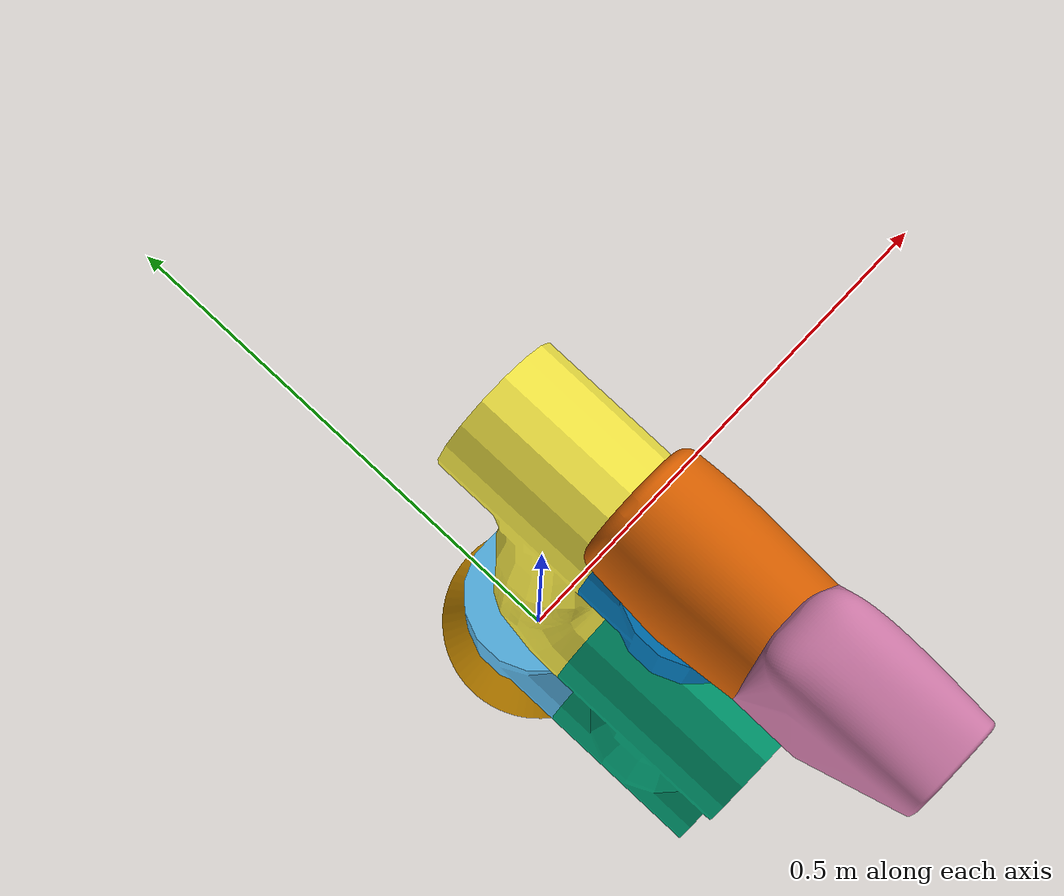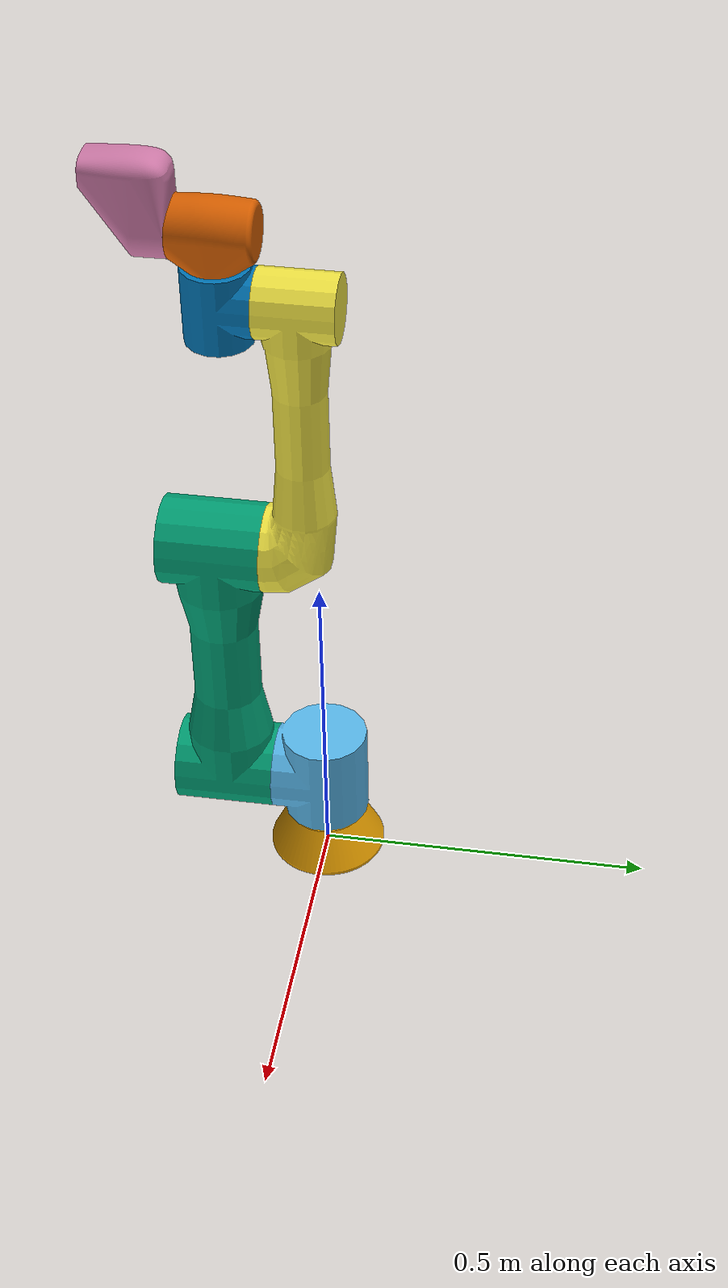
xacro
<?xml version="1.0"?>
<robot xmlns:xacro="http://www.ros.org/wiki/xacro" name="tm5-900">

  <xacro:arg name="ns" default="" />
  <xacro:arg name="prefix" default="" />
  <xacro:arg name="color" default="none" />
  <xacro:arg name="trans_hw_iface" default="hardware_interface/VelocityJointInterface" />

  <xacro:include filename="$(find tm_description)/xacro/macro.gazebo.xacro" />
  <xacro:include filename="$(find tm_description)/xacro/macro.transmission.xacro" />
  <xacro:include filename="$(find tm_description)/xacro/macro.materials.xacro" />

  <!-- tm5-900 -->
  <!-- If the user want to use newly generated named robot description file as user_defined.urdf.xacro, -->
  <!-- you must modify 'macro.tm5-900-nominal.urdf.xacro' to 'user_defined.urdf.xacro'  -->
  <xacro:include filename="$(find tm_description)/xacro/macro.tm5-900-nominal.urdf.xacro" />

  <xacro:tmr_gazebo ns="$(arg ns)" prefix="$(arg prefix)" />
  <xacro:tmr_transmission prefix="$(arg prefix)" hw_iface="$(arg trans_hw_iface)" />
  <xacro:tmr_materials/>

  <!-- Arm -->
  <xacro:property name="color" value="$(arg color)"/>
  <xacro:if value="${color == 'none'}">
    <xacro:tm5-900 ns="$(arg ns)" prefix="$(arg prefix)" />
  </xacro:if>

  <!-- Arm.color.stl -->
  <xacro:unless value="${color == 'none'}">
    <xacro:tm5-900 ns="$(arg ns)" prefix="$(arg prefix)" color="${color}" format="stl" />
  </xacro:unless>

</robot>

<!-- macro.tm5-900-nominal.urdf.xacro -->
<robot xmlns:xacro="http://www.ros.org/wiki/xacro">

  <xacro:include filename="$(find tm_description)/xacro/macro.inertial.xacro" />

  <xacro:macro name="tm5-900" params="ns prefix color:=none format:=obj
    shoulder_1_joint_lower_limit:=${radians(-270)}    shoulder_1_joint_upper_limit:=${radians(270)}
    shoulder_2_joint_lower_limit:=${radians(-180)}    shoulder_2_joint_upper_limit:=${radians(180)}
    elbow_joint_lower_limit:=${radians(-155)}    elbow_joint_upper_limit:=${radians(155)}
    wrist_1_joint_lower_limit:=${radians(-180)}    wrist_1_joint_upper_limit:=${radians(180)}
    wrist_2_joint_lower_limit:=${radians(-180)}    wrist_2_joint_upper_limit:=${radians(180)}
    wrist_3_joint_lower_limit:=${radians(-270)}    wrist_3_joint_upper_limit:=${radians(270)}
    shoulder_1_joint_velocity_limit:=${radians(180)}
    shoulder_2_joint_velocity_limit:=${radians(180)}
    elbow_joint_velocity_limit:=${radians(180)}
    wrist_1_joint_velocity_limit:=${radians(225)}
    wrist_2_joint_velocity_limit:=${radians(225)}
    wrist_3_joint_velocity_limit:=${radians(225)}
    shoulder_1_joint_effort_limit:=${157}
    shoulder_2_joint_effort_limit:=${157}
    elbow_joint_effort_limit:=${157}
    wrist_1_joint_effort_limit:=${43}
    wrist_2_joint_effort_limit:=${43}
    wrist_3_joint_effort_limit:=${43}
    safety_limits:=false safety_pos_margin:=0.15
    safety_k_position:=20">

   <xacro:property name="damping_factor" value="0.000"/>
   <xacro:property name="d1" value="${damping_factor*0.1}"/>
   <xacro:property name="d2" value="${damping_factor*0.1}"/>
   <xacro:property name="d3" value="${damping_factor*0.1}"/>
   <xacro:property name="d4" value="${damping_factor*0.1}"/>
   <xacro:property name="d5" value="${damping_factor*0.1}"/>
   <xacro:property name="d6" value="${damping_factor*0.1}"/>

   <xacro:property name="friction_factor" value="0.000"/>
   <xacro:property name="f1" value="${friction_factor*0.1}"/>
   <xacro:property name="f2" value="${friction_factor*0.1}"/>
   <xacro:property name="f3" value="${friction_factor*0.1}"/>
   <xacro:property name="f4" value="${friction_factor*0.1}"/>
   <xacro:property name="f5" value="${friction_factor*0.1}"/>
   <xacro:property name="f6" value="${friction_factor*0.1}"/>

    <!-- Inertia parameters -->
    <xacro:property name="mass_0" value="1.000" />
    <xacro:property name="mass_1" value="4.032" />
    <xacro:property name="mass_2" value="8.897" />
    <xacro:property name="mass_3" value="2.443" />
    <xacro:property name="mass_4" value="1.576" />
    <xacro:property name="mass_5" value="1.576" />
    <xacro:property name="mass_6" value="0.65" />

    <xacro:property name="unit_factor" value="0.000001"/>
    <xacro:property name="ixx_1" value="${8800.119*unit_factor}" />
    <xacro:property name="ixx_2" value="${24459.295*unit_factor}" />
    <xacro:property name="ixx_3" value="${3632.988*unit_factor}" />
    <xacro:property name="ixx_4" value="${2058.405*unit_factor}" />
    <xacro:property name="ixx_5" value="${2058.405*unit_factor}" />
    <xacro:property name="ixx_6" value="${774.544*unit_factor}" />

    <xacro:property name="iyy_1" value="${11548.982*unit_factor}" />
    <xacro:property name="iyy_2" value="${205888.616*unit_factor}" />
    <xacro:property name="iyy_3" value="${36359.26*unit_factor}" />
    <xacro:property name="iyy_4" value="${2563.079*unit_factor}" />
    <xacro:property name="iyy_5" value="${2563.079*unit_factor}" />
    <xacro:property name="iyy_6" value="${1383.811*unit_factor}" />

    <xacro:property name="izz_1" value="${11970.081*unit_factor}" />
    <xacro:property name="izz_2" value="${212473.4246*unit_factor}" />
    <xacro:property name="izz_3" value="${36895.644*unit_factor}" />
    <xacro:property name="izz_4" value="${2643.21*unit_factor}" />
    <xacro:property name="izz_5" value="${2643.21*unit_factor}" />
    <xacro:property name="izz_6" value="${1559.496*unit_factor}" />

<!--LinkDescription-->
  <link name="${prefix}link_0">

    <visual>
      <geometry>
        <mesh filename="package://tm_description/meshes/tm5-900/visual/tm5-base.${format}" />
      </geometry>
      <material name="${color}" />
    </visual>
    <collision>
      <geometry>
        <mesh filename="package://tm_description/meshes/tm5-900/collision/tm5-base_c.stl" />
      </geometry>
    </collision>
<!--inertial-->
    <xacro:cylinder_inertial_z radius="0.06" length="0.05" mass="${mass_0}">
      <origin rpy="0.000000 0.000000 0.000000" xyz="0.000000 0.000000 0.000000" />
    </xacro:cylinder_inertial_z>
  </link>
  <joint name="${prefix}shoulder_1_joint" type="revolute">
    <parent link="${prefix}link_0" />
    <child link="${prefix}link_1" />
    <origin rpy="0.000000 -0.000000 0.000000" xyz="0.000000 0.000000 0.145200" />
    <axis xyz="0 0 1" />
<!--limit-->
    <limit lower="${shoulder_1_joint_lower_limit}" upper="${shoulder_1_joint_upper_limit}" velocity="${shoulder_1_joint_velocity_limit}" effort="${shoulder_1_joint_effort_limit}" />
    <xacro:if value="${safety_limits}">
      <safety_controller soft_lower_limit="${shoulder_1_joint_lower_limit + safety_pos_margin}" soft_upper_limit="${shoulder_1_joint_upper_limit - safety_pos_margin}" k_position="${safety_k_position}" k_velocity="0.0" />
    </xacro:if>
    <dynamics damping="${d1}" friction="${f1}" />
  </joint>
  <link name="${prefix}link_1">

    <visual>
      <geometry>
        <mesh filename="package://tm_description/meshes/tm5-900/visual/tmr_400w_01.${format}" />
      </geometry>
      <material name="${color}" />
    </visual>
    <collision>
      <geometry>
        <mesh filename="package://tm_description/meshes/tm5-900/collision/tmr_400w_01_c.stl" />
      </geometry>
    </collision>
    <inertial>
      <origin rpy="0.000000 0.000000 0.000000" xyz="0.000000 0.000000 0.000000" />
      <mass value="${mass_1}" />
      <inertia ixx="${ixx_1}" ixy="0.000000" ixz="0.000000" iyy="${iyy_1}" iyz="0.000000" izz="${izz_1}" />
    </inertial>
  </link>
  <joint name="${prefix}shoulder_2_joint" type="revolute">
    <parent link="${prefix}link_1" />
    <child link="${prefix}link_2" />
    <origin rpy="-1.570796 -1.570796 0.000000" xyz="0.000000 0.000000 0.000000" />
    <axis xyz="0 0 1" />
<!--limit-->
    <limit lower="${shoulder_2_joint_lower_limit}" upper="${shoulder_2_joint_upper_limit}" velocity="${shoulder_2_joint_velocity_limit}" effort="${shoulder_2_joint_effort_limit}" />
    <xacro:if value="${safety_limits}">
      <safety_controller soft_lower_limit="${shoulder_2_joint_lower_limit + safety_pos_margin}" soft_upper_limit="${shoulder_2_joint_upper_limit - safety_pos_margin}" k_position="${safety_k_position}" k_velocity="0.0" />
    </xacro:if>
    <dynamics damping="${d2}" friction="${f2}" />
  </joint>
  <link name="${prefix}link_2">

    <visual>
      <geometry>
        <mesh filename="package://tm_description/meshes/tm5-900/visual/tm5-900_arm1.${format}" />
      </geometry>
      <material name="${color}" />
    </visual>
    <collision>
      <geometry>
        <mesh filename="package://tm_description/meshes/tm5-900/collision/tm5-900_arm1_c.stl" />
      </geometry>
    </collision>
    <inertial>
      <origin rpy="0.000000 0.000000 0.000000" xyz="0.000000 0.000000 0.000000" />
      <mass value="${mass_2}" />
      <inertia ixx="${ixx_2}" ixy="0.000000" ixz="0.000000" iyy="${iyy_2}" iyz="0.000000" izz="${izz_2}" />
    </inertial>
  </link>
  <joint name="${prefix}elbow_joint" type="revolute">
    <parent link="${prefix}link_2" />
    <child link="${prefix}link_3" />
    <origin rpy="0.000000 -0.000000 0.000000" xyz="0.429000 0.000000 0.000000" />
    <axis xyz="0 0 1" />
<!--limit-->
    <limit lower="${elbow_joint_lower_limit}" upper="${elbow_joint_upper_limit}" velocity="${elbow_joint_velocity_limit}" effort="${elbow_joint_effort_limit}" />
    <xacro:if value="${safety_limits}">
      <safety_controller soft_lower_limit="${elbow_joint_lower_limit + safety_pos_margin}" soft_upper_limit="${elbow_joint_upper_limit - safety_pos_margin}" k_position="${safety_k_position}" k_velocity="0.0" />
    </xacro:if>
    <dynamics damping="${d3}" friction="${f3}" />
  </joint>
  <link name="${prefix}link_3">

    <visual>
      <geometry>
        <mesh filename="package://tm_description/meshes/tm5-900/visual/tm5-900_arm2.${format}" />
      </geometry>
      <material name="${color}" />
    </visual>
    <collision>
      <geometry>
        <mesh filename="package://tm_description/meshes/tm5-900/collision/tm5-900_arm2_c.stl" />
      </geometry>
    </collision>
    <inertial>
      <origin rpy="0.000000 0.000000 0.000000" xyz="0.000000 0.000000 0.000000" />
      <mass value="${mass_3}" />
      <inertia ixx="${ixx_3}" ixy="0.000000" ixz="0.000000" iyy="${iyy_3}" iyz="0.000000" izz="${izz_3}" />
    </inertial>
  </link>
  <joint name="${prefix}wrist_1_joint" type="revolute">
    <parent link="${prefix}link_3" />
    <child link="${prefix}link_4" />
    <origin rpy="0.000000 -0.000000 1.570796" xyz="0.411500 0.000000 -0.122300" />
    <axis xyz="0 0 1" />
<!--limit-->
    <limit lower="${wrist_1_joint_lower_limit}" upper="${wrist_1_joint_upper_limit}" velocity="${wrist_1_joint_velocity_limit}" effort="${wrist_1_joint_effort_limit}" />
    <xacro:if value="${safety_limits}">
      <safety_controller soft_lower_limit="${wrist_1_joint_lower_limit + safety_pos_margin}" soft_upper_limit="${wrist_1_joint_upper_limit - safety_pos_margin}" k_position="${safety_k_position}" k_velocity="0.0" />
    </xacro:if>
    <dynamics damping="${d4}" friction="${f4}" />
  </joint>
  <link name="${prefix}link_4">

    <visual>
      <geometry>
        <mesh filename="package://tm_description/meshes/tm5-900/visual/tmr_100w_01.${format}" />
      </geometry>
      <material name="${color}" />
    </visual>
    <collision>
      <geometry>
        <mesh filename="package://tm_description/meshes/tm5-900/collision/tmr_100w_01_c.stl" />
      </geometry>
    </collision>
    <inertial>
      <origin rpy="0.000000 0.000000 0.000000" xyz="0.000000 0.000000 0.000000" />
      <mass value="${mass_4}" />
      <inertia ixx="${ixx_4}" ixy="0.000000" ixz="0.000000" iyy="${iyy_4}" iyz="0.000000" izz="${izz_4}" />
    </inertial>
  </link>
  <joint name="${prefix}wrist_2_joint" type="revolute">
    <parent link="${prefix}link_4" />
    <child link="${prefix}link_5" />
    <origin rpy="1.570796 -0.000000 0.000000" xyz="0.000000 -0.106000 0.000000" />
    <axis xyz="0 0 1" />
<!--limit-->
    <limit lower="${wrist_2_joint_lower_limit}" upper="${wrist_2_joint_upper_limit}" velocity="${wrist_2_joint_velocity_limit}" effort="${wrist_2_joint_effort_limit}" />
    <xacro:if value="${safety_limits}">
      <safety_controller soft_lower_limit="${wrist_2_joint_lower_limit + safety_pos_margin}" soft_upper_limit="${wrist_2_joint_upper_limit - safety_pos_margin}" k_position="${safety_k_position}" k_velocity="0.0" />
    </xacro:if>
    <dynamics damping="${d5}" friction="${f5}" />
  </joint>
  <link name="${prefix}link_5">

    <visual>
      <geometry>
        <mesh filename="package://tm_description/meshes/tm5-900/visual/tmr_100w_02.${format}" />
      </geometry>
      <material name="${color}" />
    </visual>
    <collision>
      <geometry>
        <mesh filename="package://tm_description/meshes/tm5-900/collision/tmr_100w_02_c.stl" />
      </geometry>
    </collision>
    <inertial>
      <origin rpy="0.000000 0.000000 0.000000" xyz="0.000000 0.000000 0.000000" />
      <mass value="${mass_5}" />
      <inertia ixx="${ixx_5}" ixy="0.000000" ixz="0.000000" iyy="${iyy_5}" iyz="0.000000" izz="${izz_5}" />
    </inertial>
  </link>
  <joint name="${prefix}wrist_3_joint" type="revolute">
    <parent link="${prefix}link_5" />
    <child link="${prefix}link_6" />
    <origin rpy="1.570796 -0.000000 0.000000" xyz="0.000000 -0.113150 0.000000" />
    <axis xyz="0 0 1" />
<!--limit-->
    <limit lower="${wrist_3_joint_lower_limit}" upper="${wrist_3_joint_upper_limit}" velocity="${wrist_3_joint_velocity_limit}" effort="${wrist_3_joint_effort_limit}" />
    <xacro:if value="${safety_limits}">
      <safety_controller soft_lower_limit="${wrist_3_joint_lower_limit + safety_pos_margin}" soft_upper_limit="${wrist_3_joint_upper_limit - safety_pos_margin}" k_position="${safety_k_position}" k_velocity="0.0" />
    </xacro:if>
    <dynamics damping="${d6}" friction="${f6}" />
  </joint>
  <link name="${prefix}link_6">

    <visual>
      <geometry>
        <mesh filename="package://tm_description/meshes/tm5-900/visual/tmr_ee.${format}" />
      </geometry>
      <material name="${color}" />
    </visual>
    <collision>
      <geometry>
        <mesh filename="package://tm_description/meshes/tm5-900/collision/tmr_ee_c.stl" />
      </geometry>
    </collision>
    <inertial>
      <origin rpy="0.000000 0.000000 0.000000" xyz="0.000000 0.000000 0.000000" />
      <mass value="${mass_6}" />
      <inertia ixx="${ixx_6}" ixy="0.000000" ixz="0.000000" iyy="${iyy_6}" iyz="0.000000" izz="${izz_6}" />
    </inertial>
  </link>
  <joint name="${prefix}flange_fixed_joint" type="fixed">
    <parent link="${prefix}link_6" />
    <child link="${prefix}flange_link" />
    <origin rpy="0.000000 0.000000 0.000000" xyz="0.000000 0.000000 0.000000" />
  </joint>

  <link name="${prefix}flange_link" >

  </link>

  <link name="${prefix}base" >

  </link>
  <joint name="${prefix}base_fixed_joint" type="fixed">
    <parent link="${prefix}base" />
    <child link="${prefix}link_0" />
    <origin rpy="0.000000 0.000000 0.000000" xyz="0.000000 0.000000 0.000000" />
  </joint>
  <link name="${prefix}tool0" >

  </link>

  <joint name="${prefix}flange_link-tool0" type="fixed">
    <parent link="${prefix}flange_link" />
    <child link="${prefix}tool0" />
    <origin rpy="0.000000 0.000000 0.000000" xyz="0.000000 0.000000 0.000000" />
  </joint>
<!--LinkDescription-->

  </xacro:macro>

</robot>
